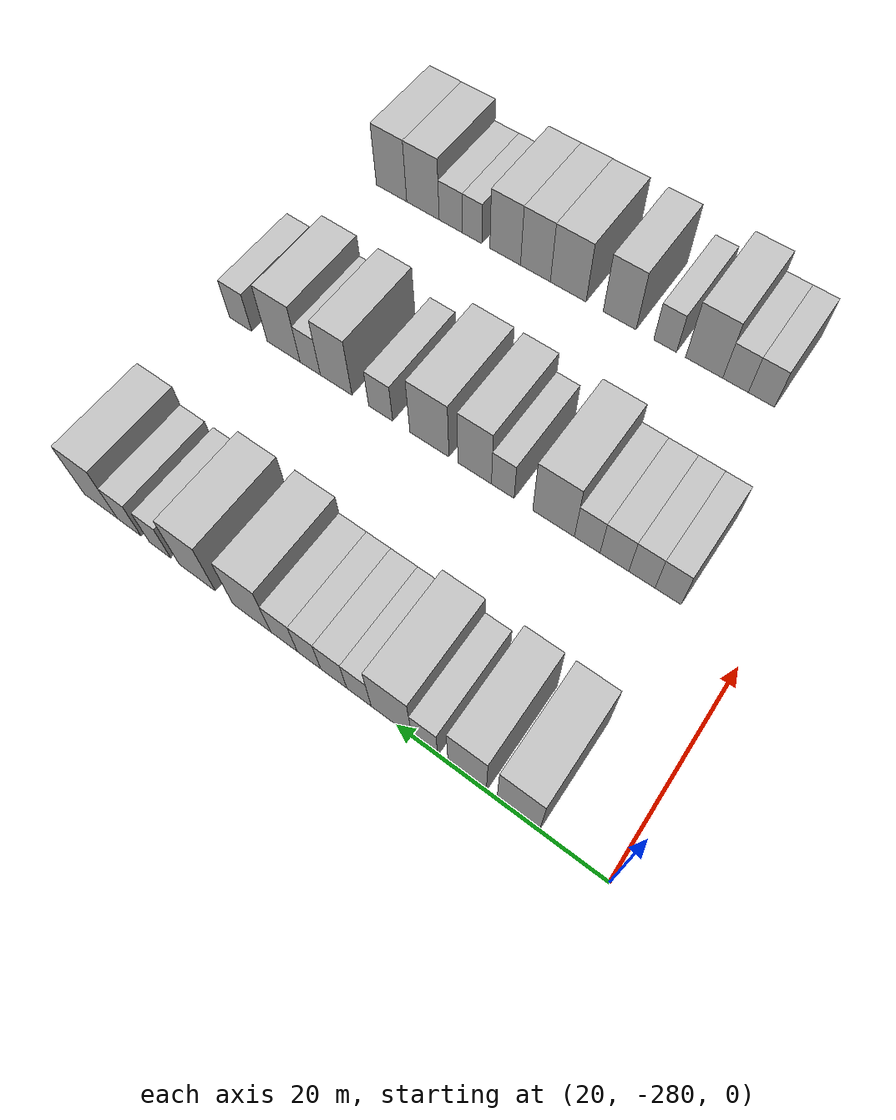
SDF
<sdf version="1.6">
 <world name="default">
  <model name="building_24">
   <static>1</static>
   <pose>25.0000 -271.7563 0 0.000000 0.000000 0.000000</pose>
   <link name="link">
    <pose>0 0 4.50 0 0 0</pose>
    <collision name="collision"><geometry><box><size>10.0000 3.9426 9.0000</size></box></geometry></collision>
    <visual name="visual">
     <cast_shadows>0</cast_shadows>
     <geometry><box><size>10.0000 3.9426 9.0000</size></box></geometry>
     <material>
      <script>
       <uri>model://HANNAS_wall/materials/scripts</uri>
       <uri>model://HANNAS_wall/materials/textures</uri>
       <name>vrc/HANNAS_wall</name>
      </script>
     </material>
    </visual>
   </link>
  </model>
  <model name="building_25">
   <static>1</static>
   <pose>25.0000 -266.9585 0 0.000000 0.000000 0.000000</pose>
   <link name="link">
    <pose>0 0 4.50 0 0 0</pose>
    <collision name="collision"><geometry><box><size>10.0000 3.6529 9.0000</size></box></geometry></collision>
    <visual name="visual">
     <cast_shadows>0</cast_shadows>
     <geometry><box><size>10.0000 3.6529 9.0000</size></box></geometry>
     <material>
      <script>
       <uri>model://HANNAS_wall/materials/scripts</uri>
       <uri>model://HANNAS_wall/materials/textures</uri>
       <name>vrc/HANNAS_wall</name>
      </script>
     </material>
    </visual>
   </link>
  </model>
  <model name="building_26">
   <static>1</static>
   <pose>25.0000 -262.8587 0 0.000000 0.000000 0.000000</pose>
   <link name="link">
    <pose>0 0 3.00 0 0 0</pose>
    <collision name="collision"><geometry><box><size>10.0000 2.5468 6.0000</size></box></geometry></collision>
    <visual name="visual">
     <cast_shadows>0</cast_shadows>
     <geometry><box><size>10.0000 2.5468 6.0000</size></box></geometry>
     <material>
      <script>
       <uri>model://HANNAS_wall/materials/scripts</uri>
       <uri>model://HANNAS_wall/materials/textures</uri>
       <name>vrc/HANNAS_wall</name>
      </script>
     </material>
    </visual>
   </link>
  </model>
  <model name="building_27">
   <static>1</static>
   <pose>25.0000 -259.5225 0 0.000000 0.000000 0.000000</pose>
   <link name="link">
    <pose>0 0 4.50 0 0 0</pose>
    <collision name="collision"><geometry><box><size>10.0000 4.1255 9.0000</size></box></geometry></collision>
    <visual name="visual">
     <cast_shadows>0</cast_shadows>
     <geometry><box><size>10.0000 4.1255 9.0000</size></box></geometry>
     <material>
      <script>
       <uri>model://HANNAS_wall/materials/scripts</uri>
       <uri>model://HANNAS_wall/materials/textures</uri>
       <name>vrc/HANNAS_wall</name>
      </script>
     </material>
    </visual>
   </link>
  </model>
  <model name="building_28">
   <static>1</static>
   <pose>25.0000 -256.1969 0 0.000000 0.000000 0.000000</pose>
   <link name="link">
    <pose>0 0 3.00 0 0 0</pose>
    <collision name="collision"><geometry><box><size>10.0000 2.5257 6.0000</size></box></geometry></collision>
    <visual name="visual">
     <cast_shadows>0</cast_shadows>
     <geometry><box><size>10.0000 2.5257 6.0000</size></box></geometry>
     <material>
      <script>
       <uri>model://HANNAS_wall/materials/scripts</uri>
       <uri>model://HANNAS_wall/materials/textures</uri>
       <name>vrc/HANNAS_wall</name>
      </script>
     </material>
    </visual>
   </link>
  </model>
  <model name="building_29">
   <static>1</static>
   <pose>25.0000 -253.5728 0 0.000000 0.000000 0.000000</pose>
   <link name="link">
    <pose>0 0 3.00 0 0 0</pose>
    <collision name="collision"><geometry><box><size>10.0000 2.7225 6.0000</size></box></geometry></collision>
    <visual name="visual">
     <cast_shadows>0</cast_shadows>
     <geometry><box><size>10.0000 2.7225 6.0000</size></box></geometry>
     <material>
      <script>
       <uri>model://HANNAS_wall/materials/scripts</uri>
       <uri>model://HANNAS_wall/materials/textures</uri>
       <name>vrc/HANNAS_wall</name>
      </script>
     </material>
    </visual>
   </link>
  </model>
  <model name="building_30">
   <static>1</static>
   <pose>25.0000 -250.9515 0 0.000000 0.000000 0.000000</pose>
   <link name="link">
    <pose>0 0 3.00 0 0 0</pose>
    <collision name="collision"><geometry><box><size>10.0000 2.5202 6.0000</size></box></geometry></collision>
    <visual name="visual">
     <cast_shadows>0</cast_shadows>
     <geometry><box><size>10.0000 2.5202 6.0000</size></box></geometry>
     <material>
      <script>
       <uri>model://HANNAS_wall/materials/scripts</uri>
       <uri>model://HANNAS_wall/materials/textures</uri>
       <name>vrc/HANNAS_wall</name>
      </script>
     </material>
    </visual>
   </link>
  </model>
  <model name="building_31">
   <static>1</static>
   <pose>25.0000 -248.2498 0 0.000000 0.000000 0.000000</pose>
   <link name="link">
    <pose>0 0 3.00 0 0 0</pose>
    <collision name="collision"><geometry><box><size>10.0000 2.8833 6.0000</size></box></geometry></collision>
    <visual name="visual">
     <cast_shadows>0</cast_shadows>
     <geometry><box><size>10.0000 2.8833 6.0000</size></box></geometry>
     <material>
      <script>
       <uri>model://HANNAS_wall/materials/scripts</uri>
       <uri>model://HANNAS_wall/materials/textures</uri>
       <name>vrc/HANNAS_wall</name>
      </script>
     </material>
    </visual>
   </link>
  </model>
  <model name="building_32">
   <static>1</static>
   <pose>25.0000 -244.6979 0 0.000000 0.000000 0.000000</pose>
   <link name="link">
    <pose>0 0 4.50 0 0 0</pose>
    <collision name="collision"><geometry><box><size>10.0000 4.2205 9.0000</size></box></geometry></collision>
    <visual name="visual">
     <cast_shadows>0</cast_shadows>
     <geometry><box><size>10.0000 4.2205 9.0000</size></box></geometry>
     <material>
      <script>
       <uri>model://HANNAS_wall/materials/scripts</uri>
       <uri>model://HANNAS_wall/materials/textures</uri>
       <name>vrc/HANNAS_wall</name>
      </script>
     </material>
    </visual>
   </link>
  </model>
  <model name="building_33">
   <static>1</static>
   <pose>25.0000 -238.4900 0 0.000000 0.000000 0.000000</pose>
   <link name="link">
    <pose>0 0 4.50 0 0 0</pose>
    <collision name="collision"><geometry><box><size>10.0000 4.1953 9.0000</size></box></geometry></collision>
    <visual name="visual">
     <cast_shadows>0</cast_shadows>
     <geometry><box><size>10.0000 4.1953 9.0000</size></box></geometry>
     <material>
      <script>
       <uri>model://HANNAS_wall/materials/scripts</uri>
       <uri>model://HANNAS_wall/materials/textures</uri>
       <name>vrc/HANNAS_wall</name>
      </script>
     </material>
    </visual>
   </link>
  </model>
  <model name="building_34">
   <static>1</static>
   <pose>25.0000 -234.1194 0 0.000000 0.000000 0.000000</pose>
   <link name="link">
    <pose>0 0 3.00 0 0 0</pose>
    <collision name="collision"><geometry><box><size>10.0000 2.5460 6.0000</size></box></geometry></collision>
    <visual name="visual">
     <cast_shadows>0</cast_shadows>
     <geometry><box><size>10.0000 2.5460 6.0000</size></box></geometry>
     <material>
      <script>
       <uri>model://HANNAS_wall/materials/scripts</uri>
       <uri>model://HANNAS_wall/materials/textures</uri>
       <name>vrc/HANNAS_wall</name>
      </script>
     </material>
    </visual>
   </link>
  </model>
  <model name="building_35">
   <static>1</static>
   <pose>25.0000 -230.4059 0 0.000000 0.000000 0.000000</pose>
   <link name="link">
    <pose>0 0 3.00 0 0 0</pose>
    <collision name="collision"><geometry><box><size>10.0000 2.8809 6.0000</size></box></geometry></collision>
    <visual name="visual">
     <cast_shadows>0</cast_shadows>
     <geometry><box><size>10.0000 2.8809 6.0000</size></box></geometry>
     <material>
      <script>
       <uri>model://HANNAS_wall/materials/scripts</uri>
       <uri>model://HANNAS_wall/materials/textures</uri>
       <name>vrc/HANNAS_wall</name>
      </script>
     </material>
    </visual>
   </link>
  </model>
  <model name="building_36">
   <static>1</static>
   <pose>25.0000 -226.9026 0 0.000000 0.000000 0.000000</pose>
   <link name="link">
    <pose>0 0 4.50 0 0 0</pose>
    <collision name="collision"><geometry><box><size>10.0000 4.1258 9.0000</size></box></geometry></collision>
    <visual name="visual">
     <cast_shadows>0</cast_shadows>
     <geometry><box><size>10.0000 4.1258 9.0000</size></box></geometry>
     <material>
      <script>
       <uri>model://HANNAS_wall/materials/scripts</uri>
       <uri>model://HANNAS_wall/materials/textures</uri>
       <name>vrc/HANNAS_wall</name>
      </script>
     </material>
    </visual>
   </link>
  </model>
  <model name="building_211">
   <static>1</static>
   <pose>47.0000 -272.2346 0 0.000000 0.000000 0.000000</pose>
   <link name="link">
    <pose>0 0 3.00 0 0 0</pose>
    <collision name="collision"><geometry><box><size>10.0000 2.5586 6.0000</size></box></geometry></collision>
    <visual name="visual">
     <cast_shadows>0</cast_shadows>
     <geometry><box><size>10.0000 2.5586 6.0000</size></box></geometry>
     <material>
      <script>
       <uri>model://HANNAS_wall/materials/scripts</uri>
       <uri>model://HANNAS_wall/materials/textures</uri>
       <name>vrc/HANNAS_wall</name>
      </script>
     </material>
    </visual>
   </link>
  </model>
  <model name="building_212">
   <static>1</static>
   <pose>47.0000 -269.6493 0 0.000000 0.000000 0.000000</pose>
   <link name="link">
    <pose>0 0 3.00 0 0 0</pose>
    <collision name="collision"><geometry><box><size>10.0000 2.6121 6.0000</size></box></geometry></collision>
    <visual name="visual">
     <cast_shadows>0</cast_shadows>
     <geometry><box><size>10.0000 2.6121 6.0000</size></box></geometry>
     <material>
      <script>
       <uri>model://HANNAS_wall/materials/scripts</uri>
       <uri>model://HANNAS_wall/materials/textures</uri>
       <name>vrc/HANNAS_wall</name>
      </script>
     </material>
    </visual>
   </link>
  </model>
  <model name="building_213">
   <static>1</static>
   <pose>47.0000 -266.8809 0 0.000000 0.000000 0.000000</pose>
   <link name="link">
    <pose>0 0 3.00 0 0 0</pose>
    <collision name="collision"><geometry><box><size>10.0000 2.9248 6.0000</size></box></geometry></collision>
    <visual name="visual">
     <cast_shadows>0</cast_shadows>
     <geometry><box><size>10.0000 2.9248 6.0000</size></box></geometry>
     <material>
      <script>
       <uri>model://HANNAS_wall/materials/scripts</uri>
       <uri>model://HANNAS_wall/materials/textures</uri>
       <name>vrc/HANNAS_wall</name>
      </script>
     </material>
    </visual>
   </link>
  </model>
  <model name="building_214">
   <static>1</static>
   <pose>47.0000 -264.0968 0 0.000000 0.000000 0.000000</pose>
   <link name="link">
    <pose>0 0 3.00 0 0 0</pose>
    <collision name="collision"><geometry><box><size>10.0000 2.6432 6.0000</size></box></geometry></collision>
    <visual name="visual">
     <cast_shadows>0</cast_shadows>
     <geometry><box><size>10.0000 2.6432 6.0000</size></box></geometry>
     <material>
      <script>
       <uri>model://HANNAS_wall/materials/scripts</uri>
       <uri>model://HANNAS_wall/materials/textures</uri>
       <name>vrc/HANNAS_wall</name>
      </script>
     </material>
    </visual>
   </link>
  </model>
  <model name="building_215">
   <static>1</static>
   <pose>47.0000 -260.5822 0 0.000000 0.000000 0.000000</pose>
   <link name="link">
    <pose>0 0 4.50 0 0 0</pose>
    <collision name="collision"><geometry><box><size>10.0000 4.3861 9.0000</size></box></geometry></collision>
    <visual name="visual">
     <cast_shadows>0</cast_shadows>
     <geometry><box><size>10.0000 4.3861 9.0000</size></box></geometry>
     <material>
      <script>
       <uri>model://HANNAS_wall/materials/scripts</uri>
       <uri>model://HANNAS_wall/materials/textures</uri>
       <name>vrc/HANNAS_wall</name>
      </script>
     </material>
    </visual>
   </link>
  </model>
  <model name="building_216">
   <static>1</static>
   <pose>47.0000 -255.1515 0 0.000000 0.000000 0.000000</pose>
   <link name="link">
    <pose>0 0 3.00 0 0 0</pose>
    <collision name="collision"><geometry><box><size>10.0000 2.4751 6.0000</size></box></geometry></collision>
    <visual name="visual">
     <cast_shadows>0</cast_shadows>
     <geometry><box><size>10.0000 2.4751 6.0000</size></box></geometry>
     <material>
      <script>
       <uri>model://HANNAS_wall/materials/scripts</uri>
       <uri>model://HANNAS_wall/materials/textures</uri>
       <name>vrc/HANNAS_wall</name>
      </script>
     </material>
    </visual>
   </link>
  </model>
  <model name="building_217">
   <static>1</static>
   <pose>47.0000 -252.0521 0 0.000000 0.000000 0.000000</pose>
   <link name="link">
    <pose>0 0 4.50 0 0 0</pose>
    <collision name="collision"><geometry><box><size>10.0000 3.7237 9.0000</size></box></geometry></collision>
    <visual name="visual">
     <cast_shadows>0</cast_shadows>
     <geometry><box><size>10.0000 3.7237 9.0000</size></box></geometry>
     <material>
      <script>
       <uri>model://HANNAS_wall/materials/scripts</uri>
       <uri>model://HANNAS_wall/materials/textures</uri>
       <name>vrc/HANNAS_wall</name>
      </script>
     </material>
    </visual>
   </link>
  </model>
  <model name="building_218">
   <static>1</static>
   <pose>47.0000 -246.9552 0 0.000000 0.000000 0.000000</pose>
   <link name="link">
    <pose>0 0 4.50 0 0 0</pose>
    <collision name="collision"><geometry><box><size>10.0000 4.4700 9.0000</size></box></geometry></collision>
    <visual name="visual">
     <cast_shadows>0</cast_shadows>
     <geometry><box><size>10.0000 4.4700 9.0000</size></box></geometry>
     <material>
      <script>
       <uri>model://HANNAS_wall/materials/scripts</uri>
       <uri>model://HANNAS_wall/materials/textures</uri>
       <name>vrc/HANNAS_wall</name>
      </script>
     </material>
    </visual>
   </link>
  </model>
  <model name="building_219">
   <static>1</static>
   <pose>47.0000 -241.2975 0 0.000000 0.000000 0.000000</pose>
   <link name="link">
    <pose>0 0 3.00 0 0 0</pose>
    <collision name="collision"><geometry><box><size>10.0000 2.8454 6.0000</size></box></geometry></collision>
    <visual name="visual">
     <cast_shadows>0</cast_shadows>
     <geometry><box><size>10.0000 2.8454 6.0000</size></box></geometry>
     <material>
      <script>
       <uri>model://HANNAS_wall/materials/scripts</uri>
       <uri>model://HANNAS_wall/materials/textures</uri>
       <name>vrc/HANNAS_wall</name>
      </script>
     </material>
    </visual>
   </link>
  </model>
  <model name="building_220">
   <static>1</static>
   <pose>47.0000 -235.9401 0 0.000000 0.000000 0.000000</pose>
   <link name="link">
    <pose>0 0 4.50 0 0 0</pose>
    <collision name="collision"><geometry><box><size>10.0000 3.8693 9.0000</size></box></geometry></collision>
    <visual name="visual">
     <cast_shadows>0</cast_shadows>
     <geometry><box><size>10.0000 3.8693 9.0000</size></box></geometry>
     <material>
      <script>
       <uri>model://HANNAS_wall/materials/scripts</uri>
       <uri>model://HANNAS_wall/materials/textures</uri>
       <name>vrc/HANNAS_wall</name>
      </script>
     </material>
    </visual>
   </link>
  </model>
  <model name="building_221">
   <static>1</static>
   <pose>47.0000 -232.7497 0 0.000000 0.000000 0.000000</pose>
   <link name="link">
    <pose>0 0 3.00 0 0 0</pose>
    <collision name="collision"><geometry><box><size>10.0000 2.5116 6.0000</size></box></geometry></collision>
    <visual name="visual">
     <cast_shadows>0</cast_shadows>
     <geometry><box><size>10.0000 2.5116 6.0000</size></box></geometry>
     <material>
      <script>
       <uri>model://HANNAS_wall/materials/scripts</uri>
       <uri>model://HANNAS_wall/materials/textures</uri>
       <name>vrc/HANNAS_wall</name>
      </script>
     </material>
    </visual>
   </link>
  </model>
  <model name="building_222">
   <static>1</static>
   <pose>47.0000 -229.4115 0 0.000000 0.000000 0.000000</pose>
   <link name="link">
    <pose>0 0 4.50 0 0 0</pose>
    <collision name="collision"><geometry><box><size>10.0000 4.1649 9.0000</size></box></geometry></collision>
    <visual name="visual">
     <cast_shadows>0</cast_shadows>
     <geometry><box><size>10.0000 4.1649 9.0000</size></box></geometry>
     <material>
      <script>
       <uri>model://HANNAS_wall/materials/scripts</uri>
       <uri>model://HANNAS_wall/materials/textures</uri>
       <name>vrc/HANNAS_wall</name>
      </script>
     </material>
    </visual>
   </link>
  </model>
  <model name="building_223">
   <static>1</static>
   <pose>47.0000 -223.8870 0 0.000000 0.000000 0.000000</pose>
   <link name="link">
    <pose>0 0 3.00 0 0 0</pose>
    <collision name="collision"><geometry><box><size>10.0000 2.8841 6.0000</size></box></geometry></collision>
    <visual name="visual">
     <cast_shadows>0</cast_shadows>
     <geometry><box><size>10.0000 2.8841 6.0000</size></box></geometry>
     <material>
      <script>
       <uri>model://HANNAS_wall/materials/scripts</uri>
       <uri>model://HANNAS_wall/materials/textures</uri>
       <name>vrc/HANNAS_wall</name>
      </script>
     </material>
    </visual>
   </link>
  </model>
  <model name="building_395">
   <static>1</static>
   <pose>69.0000 -269.5591 0 0.000000 0.000000 0.000000</pose>
   <link name="link">
    <pose>0 0 3.00 0 0 0</pose>
    <collision name="collision"><geometry><box><size>10.0000 2.7766 6.0000</size></box></geometry></collision>
    <visual name="visual">
     <cast_shadows>0</cast_shadows>
     <geometry><box><size>10.0000 2.7766 6.0000</size></box></geometry>
     <material>
      <script>
       <uri>model://HANNAS_wall/materials/scripts</uri>
       <uri>model://HANNAS_wall/materials/textures</uri>
       <name>vrc/HANNAS_wall</name>
      </script>
     </material>
    </visual>
   </link>
  </model>
  <model name="building_396">
   <static>1</static>
   <pose>69.0000 -266.8018 0 0.000000 0.000000 0.000000</pose>
   <link name="link">
    <pose>0 0 3.00 0 0 0</pose>
    <collision name="collision"><geometry><box><size>10.0000 2.7380 6.0000</size></box></geometry></collision>
    <visual name="visual">
     <cast_shadows>0</cast_shadows>
     <geometry><box><size>10.0000 2.7380 6.0000</size></box></geometry>
     <material>
      <script>
       <uri>model://HANNAS_wall/materials/scripts</uri>
       <uri>model://HANNAS_wall/materials/textures</uri>
       <name>vrc/HANNAS_wall</name>
      </script>
     </material>
    </visual>
   </link>
  </model>
  <model name="building_397">
   <static>1</static>
   <pose>69.0000 -263.4028 0 0.000000 0.000000 0.000000</pose>
   <link name="link">
    <pose>0 0 4.50 0 0 0</pose>
    <collision name="collision"><geometry><box><size>10.0000 4.0600 9.0000</size></box></geometry></collision>
    <visual name="visual">
     <cast_shadows>0</cast_shadows>
     <geometry><box><size>10.0000 4.0600 9.0000</size></box></geometry>
     <material>
      <script>
       <uri>model://HANNAS_wall/materials/scripts</uri>
       <uri>model://HANNAS_wall/materials/textures</uri>
       <name>vrc/HANNAS_wall</name>
      </script>
     </material>
    </visual>
   </link>
  </model>
  <model name="building_398">
   <static>1</static>
   <pose>69.0000 -259.0981 0 0.000000 0.000000 0.000000</pose>
   <link name="link">
    <pose>0 0 3.00 0 0 0</pose>
    <collision name="collision"><geometry><box><size>10.0000 2.5494 6.0000</size></box></geometry></collision>
    <visual name="visual">
     <cast_shadows>0</cast_shadows>
     <geometry><box><size>10.0000 2.5494 6.0000</size></box></geometry>
     <material>
      <script>
       <uri>model://HANNAS_wall/materials/scripts</uri>
       <uri>model://HANNAS_wall/materials/textures</uri>
       <name>vrc/HANNAS_wall</name>
      </script>
     </material>
    </visual>
   </link>
  </model>
  <model name="building_399">
   <static>1</static>
   <pose>69.0000 -253.9337 0 0.000000 0.000000 0.000000</pose>
   <link name="link">
    <pose>0 0 4.50 0 0 0</pose>
    <collision name="collision"><geometry><box><size>10.0000 3.7794 9.0000</size></box></geometry></collision>
    <visual name="visual">
     <cast_shadows>0</cast_shadows>
     <geometry><box><size>10.0000 3.7794 9.0000</size></box></geometry>
     <material>
      <script>
       <uri>model://HANNAS_wall/materials/scripts</uri>
       <uri>model://HANNAS_wall/materials/textures</uri>
       <name>vrc/HANNAS_wall</name>
      </script>
     </material>
    </visual>
   </link>
  </model>
  <model name="building_400">
   <static>1</static>
   <pose>69.0000 -247.9151 0 0.000000 0.000000 0.000000</pose>
   <link name="link">
    <pose>0 0 4.50 0 0 0</pose>
    <collision name="collision"><geometry><box><size>10.0000 4.2578 9.0000</size></box></geometry></collision>
    <visual name="visual">
     <cast_shadows>0</cast_shadows>
     <geometry><box><size>10.0000 4.2578 9.0000</size></box></geometry>
     <material>
      <script>
       <uri>model://HANNAS_wall/materials/scripts</uri>
       <uri>model://HANNAS_wall/materials/textures</uri>
       <name>vrc/HANNAS_wall</name>
      </script>
     </material>
    </visual>
   </link>
  </model>
  <model name="building_401">
   <static>1</static>
   <pose>69.0000 -243.9695 0 0.000000 0.000000 0.000000</pose>
   <link name="link">
    <pose>0 0 4.50 0 0 0</pose>
    <collision name="collision"><geometry><box><size>10.0000 3.6334 9.0000</size></box></geometry></collision>
    <visual name="visual">
     <cast_shadows>0</cast_shadows>
     <geometry><box><size>10.0000 3.6334 9.0000</size></box></geometry>
     <material>
      <script>
       <uri>model://HANNAS_wall/materials/scripts</uri>
       <uri>model://HANNAS_wall/materials/textures</uri>
       <name>vrc/HANNAS_wall</name>
      </script>
     </material>
    </visual>
   </link>
  </model>
  <model name="building_402">
   <static>1</static>
   <pose>69.0000 -240.2548 0 0.000000 0.000000 0.000000</pose>
   <link name="link">
    <pose>0 0 4.50 0 0 0</pose>
    <collision name="collision"><geometry><box><size>10.0000 3.7961 9.0000</size></box></geometry></collision>
    <visual name="visual">
     <cast_shadows>0</cast_shadows>
     <geometry><box><size>10.0000 3.7961 9.0000</size></box></geometry>
     <material>
      <script>
       <uri>model://HANNAS_wall/materials/scripts</uri>
       <uri>model://HANNAS_wall/materials/textures</uri>
       <name>vrc/HANNAS_wall</name>
      </script>
     </material>
    </visual>
   </link>
  </model>
  <model name="building_403">
   <static>1</static>
   <pose>69.0000 -236.1286 0 0.000000 0.000000 0.000000</pose>
   <link name="link">
    <pose>0 0 3.00 0 0 0</pose>
    <collision name="collision"><geometry><box><size>10.0000 2.4563 6.0000</size></box></geometry></collision>
    <visual name="visual">
     <cast_shadows>0</cast_shadows>
     <geometry><box><size>10.0000 2.4563 6.0000</size></box></geometry>
     <material>
      <script>
       <uri>model://HANNAS_wall/materials/scripts</uri>
       <uri>model://HANNAS_wall/materials/textures</uri>
       <name>vrc/HANNAS_wall</name>
      </script>
     </material>
    </visual>
   </link>
  </model>
  <model name="building_404">
   <static>1</static>
   <pose>69.0000 -233.4031 0 0.000000 0.000000 0.000000</pose>
   <link name="link">
    <pose>0 0 3.00 0 0 0</pose>
    <collision name="collision"><geometry><box><size>10.0000 2.9946 6.0000</size></box></geometry></collision>
    <visual name="visual">
     <cast_shadows>0</cast_shadows>
     <geometry><box><size>10.0000 2.9946 6.0000</size></box></geometry>
     <material>
      <script>
       <uri>model://HANNAS_wall/materials/scripts</uri>
       <uri>model://HANNAS_wall/materials/textures</uri>
       <name>vrc/HANNAS_wall</name>
      </script>
     </material>
    </visual>
   </link>
  </model>
  <model name="building_405">
   <static>1</static>
   <pose>69.0000 -229.7811 0 0.000000 0.000000 0.000000</pose>
   <link name="link">
    <pose>0 0 4.50 0 0 0</pose>
    <collision name="collision"><geometry><box><size>10.0000 4.2494 9.0000</size></box></geometry></collision>
    <visual name="visual">
     <cast_shadows>0</cast_shadows>
     <geometry><box><size>10.0000 4.2494 9.0000</size></box></geometry>
     <material>
      <script>
       <uri>model://HANNAS_wall/materials/scripts</uri>
       <uri>model://HANNAS_wall/materials/textures</uri>
       <name>vrc/HANNAS_wall</name>
      </script>
     </material>
    </visual>
   </link>
  </model>
  <model name="building_406">
   <static>1</static>
   <pose>69.0000 -225.6341 0 0.000000 0.000000 0.000000</pose>
   <link name="link">
    <pose>0 0 4.50 0 0 0</pose>
    <collision name="collision"><geometry><box><size>10.0000 4.0446 9.0000</size></box></geometry></collision>
    <visual name="visual">
     <cast_shadows>0</cast_shadows>
     <geometry><box><size>10.0000 4.0446 9.0000</size></box></geometry>
     <material>
      <script>
       <uri>model://HANNAS_wall/materials/scripts</uri>
       <uri>model://HANNAS_wall/materials/textures</uri>
       <name>vrc/HANNAS_wall</name>
      </script>
     </material>
    </visual>
   </link>
  </model>
 </world>
</sdf>
